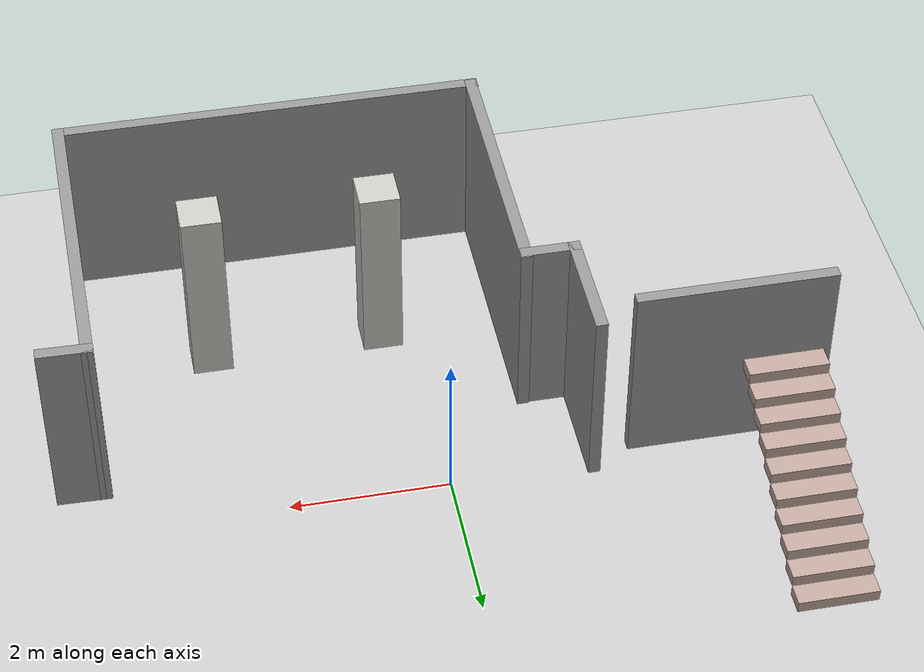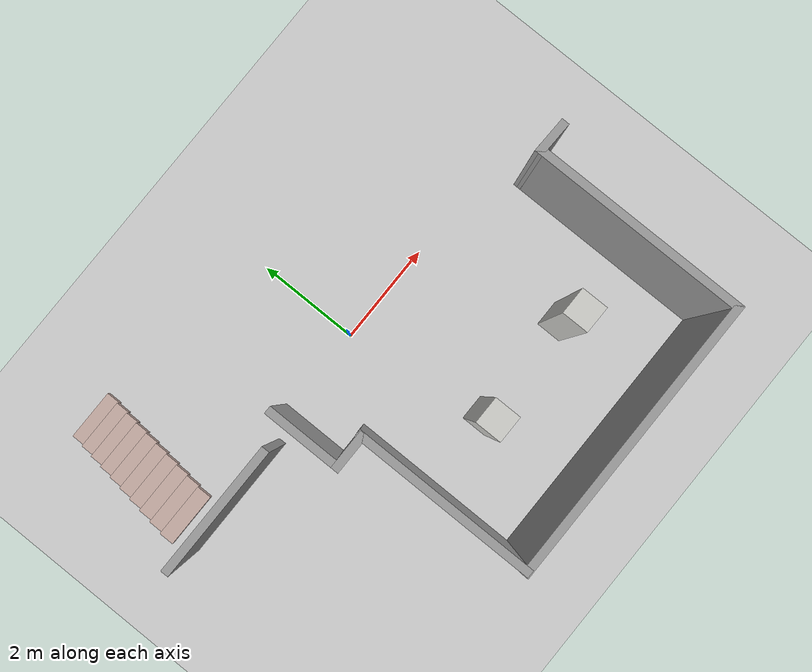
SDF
<sdf version="1.6">
 <world name="default">
  <model name="ground_plane">
   <static>1</static>
   <link name="link">
    <collision name="collision">
     <geometry><plane><normal>0 0 1</normal><size>100 100</size></plane></geometry>
     <surface><friction><ode><mu>100</mu><mu2>50</mu2></ode></friction></surface>
    </collision>
    <visual name="visual">
     <cast_shadows>0</cast_shadows>
     <geometry><plane><normal>0 0 1</normal><size>100 100</size></plane></geometry>
     <material>
      <script><uri>file://media/materials/scripts/gazebo.material</uri><name>Gazebo/Grey</name></script>
     </material>
    </visual>
   </link>
  </model>
  <model name="amtc">
   <link name="Stairs_2">
    <visual name="Stairs_2_Visual_0">
     <pose>-4.10209 2.63631 0.075 0 -0 0</pose>
     <geometry><box><size>1 0.275 0.15</size></box></geometry>
     <material>
      <script><uri>file://media/materials/scripts/gazebo.material</uri><name>Gazebo/Grey</name></script>
      <ambient>0.760784 0.662745 0.627451 1</ambient>
      <diffuse>0.7 0.7 0.7 1</diffuse>
      <specular>0.01 0.01 0.01 1</specular>
      <emissive>0 0 0 1</emissive>
     </material>
     <meta><layer>0</layer></meta>
    </visual>
    <visual name="Stairs_2_Visual_7">
     <pose>-4.10209 0.711315 1.125 0 -0 0</pose>
     <geometry><box><size>1 0.275 0.15</size></box></geometry>
     <material>
      <script><uri>file://media/materials/scripts/gazebo.material</uri><name>Gazebo/Grey</name></script>
      <ambient>0.760784 0.662745 0.627451 1</ambient>
      <diffuse>0.7 0.7 0.7 1</diffuse>
      <specular>0.01 0.01 0.01 1</specular>
      <emissive>0 0 0 1</emissive>
     </material>
     <meta><layer>0</layer></meta>
    </visual>
    <visual name="Stairs_2_Visual_8">
     <pose>-4.10209 0.436315 1.275 0 -0 0</pose>
     <geometry><box><size>1 0.275 0.15</size></box></geometry>
     <material>
      <script><uri>file://media/materials/scripts/gazebo.material</uri><name>Gazebo/Grey</name></script>
      <ambient>0.760784 0.662745 0.627451 1</ambient>
      <diffuse>0.7 0.7 0.7 1</diffuse>
      <specular>0.01 0.01 0.01 1</specular>
      <emissive>0 0 0 1</emissive>
     </material>
     <meta><layer>0</layer></meta>
    </visual>
    <visual name="Stairs_2_Visual_6">
     <pose>-4.10209 0.986315 0.975 0 -0 0</pose>
     <geometry><box><size>1 0.275 0.15</size></box></geometry>
     <material>
      <script><uri>file://media/materials/scripts/gazebo.material</uri><name>Gazebo/Grey</name></script>
      <ambient>0.760784 0.662745 0.627451 1</ambient>
      <diffuse>0.7 0.7 0.7 1</diffuse>
      <specular>0.01 0.01 0.01 1</specular>
      <emissive>0 0 0 1</emissive>
     </material>
     <meta><layer>0</layer></meta>
    </visual>
    <visual name="Stairs_2_Visual_5">
     <pose>-4.10209 1.26131 0.825 0 -0 0</pose>
     <geometry><box><size>1 0.275 0.15</size></box></geometry>
     <material>
      <script><uri>file://media/materials/scripts/gazebo.material</uri><name>Gazebo/Grey</name></script>
      <ambient>0.760784 0.662745 0.627451 1</ambient>
      <diffuse>0.7 0.7 0.7 1</diffuse>
      <specular>0.01 0.01 0.01 1</specular>
      <emissive>0 0 0 1</emissive>
     </material>
     <meta><layer>0</layer></meta>
    </visual>
    <visual name="Stairs_2_Visual_2">
     <pose>-4.10209 2.08631 0.375 0 -0 0</pose>
     <geometry><box><size>1 0.275 0.15</size></box></geometry>
     <material>
      <script><uri>file://media/materials/scripts/gazebo.material</uri><name>Gazebo/Grey</name></script>
      <ambient>0.760784 0.662745 0.627451 1</ambient>
      <diffuse>0.7 0.7 0.7 1</diffuse>
      <specular>0.01 0.01 0.01 1</specular>
      <emissive>0 0 0 1</emissive>
     </material>
     <meta><layer>0</layer></meta>
    </visual>
    <visual name="Stairs_2_Visual_4">
     <pose>-4.10209 1.53632 0.675 0 -0 0</pose>
     <geometry><box><size>1 0.275 0.15</size></box></geometry>
     <material>
      <script><uri>file://media/materials/scripts/gazebo.material</uri><name>Gazebo/Grey</name></script>
      <ambient>0.760784 0.662745 0.627451 1</ambient>
      <diffuse>0.7 0.7 0.7 1</diffuse>
      <specular>0.01 0.01 0.01 1</specular>
      <emissive>0 0 0 1</emissive>
     </material>
     <meta><layer>0</layer></meta>
    </visual>
    <visual name="Stairs_2_Visual_1">
     <pose>-4.10209 2.36131 0.225 0 -0 0</pose>
     <geometry><box><size>1 0.275 0.15</size></box></geometry>
     <material>
      <script><uri>file://media/materials/scripts/gazebo.material</uri><name>Gazebo/Grey</name></script>
      <ambient>0.760784 0.662745 0.627451 1</ambient>
      <diffuse>0.7 0.7 0.7 1</diffuse>
      <specular>0.01 0.01 0.01 1</specular>
      <emissive>0 0 0 1</emissive>
     </material>
     <meta><layer>0</layer></meta>
    </visual>
    <visual name="Stairs_2_Visual_9">
     <pose>-4.10209 0.161315 1.425 0 -0 0</pose>
     <geometry><box><size>1 0.275 0.15</size></box></geometry>
     <material>
      <script><uri>file://media/materials/scripts/gazebo.material</uri><name>Gazebo/Grey</name></script>
      <ambient>0.760784 0.662745 0.627451 1</ambient>
      <diffuse>0.7 0.7 0.7 1</diffuse>
      <specular>0.01 0.01 0.01 1</specular>
      <emissive>0 0 0 1</emissive>
     </material>
     <meta><layer>0</layer></meta>
    </visual>
    <visual name="Stairs_2_Visual_3">
     <pose>-4.10209 1.81132 0.525 0 -0 0</pose>
     <geometry><box><size>1 0.275 0.15</size></box></geometry>
     <material>
      <script><uri>file://media/materials/scripts/gazebo.material</uri><name>Gazebo/Grey</name></script>
      <ambient>0.760784 0.662745 0.627451 1</ambient>
      <diffuse>0.7 0.7 0.7 1</diffuse>
      <specular>0.01 0.01 0.01 1</specular>
      <emissive>0 0 0 1</emissive>
     </material>
     <meta><layer>0</layer></meta>
    </visual>
    <collision name="Stairs_2_Collision_1">
     <pose>-4.10209 2.36131 0.225 0 -0 0</pose>
     <geometry><box><size>1 0.275 0.15</size></box></geometry>
     <surface>
      <friction>
       <ode><mu>1</mu><mu2>1</mu2><fdir1>0 0 0</fdir1><slip1>0</slip1><slip2>0</slip2></ode>
       <torsional>
        <coefficient>1</coefficient>
        <patch_radius>0</patch_radius>
        <surface_radius>0</surface_radius>
        <use_patch_radius>1</use_patch_radius>
        <ode><slip>0</slip></ode>
       </torsional>
      </friction>
      <bounce><restitution_coefficient>0</restitution_coefficient><threshold>1e+06</threshold></bounce>
      <contact>
       <collide_without_contact>0</collide_without_contact>
       <collide_without_contact_bitmask>1</collide_without_contact_bitmask>
       <collide_bitmask>1</collide_bitmask>
       <ode>
        <soft_cfm>0</soft_cfm>
        <soft_erp>0.2</soft_erp>
        <kp>1e+13</kp>
        <kd>1</kd>
        <max_vel>0.01</max_vel>
        <min_depth>0</min_depth>
       </ode>
       <bullet>
        <split_impulse>1</split_impulse>
        <split_impulse_penetration_threshold>-0.01</split_impulse_penetration_threshold>
        <soft_cfm>0</soft_cfm>
        <soft_erp>0.2</soft_erp>
        <kp>1e+13</kp>
        <kd>1</kd>
       </bullet>
      </contact>
     </surface>
    </collision>
    <collision name="Stairs_2_Collision_2">
     <pose>-4.10209 2.08631 0.375 0 -0 0</pose>
     <geometry><box><size>1 0.275 0.15</size></box></geometry>
     <surface>
      <friction>
       <ode><mu>1</mu><mu2>1</mu2><fdir1>0 0 0</fdir1><slip1>0</slip1><slip2>0</slip2></ode>
       <torsional>
        <coefficient>1</coefficient>
        <patch_radius>0</patch_radius>
        <surface_radius>0</surface_radius>
        <use_patch_radius>1</use_patch_radius>
        <ode><slip>0</slip></ode>
       </torsional>
      </friction>
      <bounce><restitution_coefficient>0</restitution_coefficient><threshold>1e+06</threshold></bounce>
      <contact>
       <collide_without_contact>0</collide_without_contact>
       <collide_without_contact_bitmask>1</collide_without_contact_bitmask>
       <collide_bitmask>1</collide_bitmask>
       <ode>
        <soft_cfm>0</soft_cfm>
        <soft_erp>0.2</soft_erp>
        <kp>1e+13</kp>
        <kd>1</kd>
        <max_vel>0.01</max_vel>
        <min_depth>0</min_depth>
       </ode>
       <bullet>
        <split_impulse>1</split_impulse>
        <split_impulse_penetration_threshold>-0.01</split_impulse_penetration_threshold>
        <soft_cfm>0</soft_cfm>
        <soft_erp>0.2</soft_erp>
        <kp>1e+13</kp>
        <kd>1</kd>
       </bullet>
      </contact>
     </surface>
    </collision>
    <collision name="Stairs_2_Collision_3">
     <pose>-4.10209 1.81132 0.525 0 -0 0</pose>
     <geometry><box><size>1 0.275 0.15</size></box></geometry>
     <surface>
      <friction>
       <ode><mu>1</mu><mu2>1</mu2><fdir1>0 0 0</fdir1><slip1>0</slip1><slip2>0</slip2></ode>
       <torsional>
        <coefficient>1</coefficient>
        <patch_radius>0</patch_radius>
        <surface_radius>0</surface_radius>
        <use_patch_radius>1</use_patch_radius>
        <ode><slip>0</slip></ode>
       </torsional>
      </friction>
      <bounce><restitution_coefficient>0</restitution_coefficient><threshold>1e+06</threshold></bounce>
      <contact>
       <collide_without_contact>0</collide_without_contact>
       <collide_without_contact_bitmask>1</collide_without_contact_bitmask>
       <collide_bitmask>1</collide_bitmask>
       <ode>
        <soft_cfm>0</soft_cfm>
        <soft_erp>0.2</soft_erp>
        <kp>1e+13</kp>
        <kd>1</kd>
        <max_vel>0.01</max_vel>
        <min_depth>0</min_depth>
       </ode>
       <bullet>
        <split_impulse>1</split_impulse>
        <split_impulse_penetration_threshold>-0.01</split_impulse_penetration_threshold>
        <soft_cfm>0</soft_cfm>
        <soft_erp>0.2</soft_erp>
        <kp>1e+13</kp>
        <kd>1</kd>
       </bullet>
      </contact>
     </surface>
    </collision>
    <collision name="Stairs_2_Collision_0">
     <pose>-4.10209 2.63631 0.075 0 -0 0</pose>
     <geometry><box><size>1 0.275 0.15</size></box></geometry>
     <surface>
      <friction>
       <ode><mu>1</mu><mu2>1</mu2><fdir1>0 0 0</fdir1><slip1>0</slip1><slip2>0</slip2></ode>
       <torsional>
        <coefficient>1</coefficient>
        <patch_radius>0</patch_radius>
        <surface_radius>0</surface_radius>
        <use_patch_radius>1</use_patch_radius>
        <ode><slip>0</slip></ode>
       </torsional>
      </friction>
      <bounce><restitution_coefficient>0</restitution_coefficient><threshold>1e+06</threshold></bounce>
      <contact>
       <collide_without_contact>0</collide_without_contact>
       <collide_without_contact_bitmask>1</collide_without_contact_bitmask>
       <collide_bitmask>1</collide_bitmask>
       <ode>
        <soft_cfm>0</soft_cfm>
        <soft_erp>0.2</soft_erp>
        <kp>1e+13</kp>
        <kd>1</kd>
        <max_vel>0.01</max_vel>
        <min_depth>0</min_depth>
       </ode>
       <bullet>
        <split_impulse>1</split_impulse>
        <split_impulse_penetration_threshold>-0.01</split_impulse_penetration_threshold>
        <soft_cfm>0</soft_cfm>
        <soft_erp>0.2</soft_erp>
        <kp>1e+13</kp>
        <kd>1</kd>
       </bullet>
      </contact>
     </surface>
    </collision>
    <collision name="Stairs_2_Collision_4">
     <pose>-4.10209 1.53632 0.675 0 -0 0</pose>
     <geometry><box><size>1 0.275 0.15</size></box></geometry>
     <surface>
      <friction>
       <ode><mu>1</mu><mu2>1</mu2><fdir1>0 0 0</fdir1><slip1>0</slip1><slip2>0</slip2></ode>
       <torsional>
        <coefficient>1</coefficient>
        <patch_radius>0</patch_radius>
        <surface_radius>0</surface_radius>
        <use_patch_radius>1</use_patch_radius>
        <ode><slip>0</slip></ode>
       </torsional>
      </friction>
      <bounce><restitution_coefficient>0</restitution_coefficient><threshold>1e+06</threshold></bounce>
      <contact>
       <collide_without_contact>0</collide_without_contact>
       <collide_without_contact_bitmask>1</collide_without_contact_bitmask>
       <collide_bitmask>1</collide_bitmask>
       <ode>
        <soft_cfm>0</soft_cfm>
        <soft_erp>0.2</soft_erp>
        <kp>1e+13</kp>
        <kd>1</kd>
        <max_vel>0.01</max_vel>
        <min_depth>0</min_depth>
       </ode>
       <bullet>
        <split_impulse>1</split_impulse>
        <split_impulse_penetration_threshold>-0.01</split_impulse_penetration_threshold>
        <soft_cfm>0</soft_cfm>
        <soft_erp>0.2</soft_erp>
        <kp>1e+13</kp>
        <kd>1</kd>
       </bullet>
      </contact>
     </surface>
    </collision>
    <collision name="Stairs_2_Collision_7">
     <pose>-4.10209 0.711315 1.125 0 -0 0</pose>
     <geometry><box><size>1 0.275 0.15</size></box></geometry>
     <surface>
      <friction>
       <ode><mu>1</mu><mu2>1</mu2><fdir1>0 0 0</fdir1><slip1>0</slip1><slip2>0</slip2></ode>
       <torsional>
        <coefficient>1</coefficient>
        <patch_radius>0</patch_radius>
        <surface_radius>0</surface_radius>
        <use_patch_radius>1</use_patch_radius>
        <ode><slip>0</slip></ode>
       </torsional>
      </friction>
      <bounce><restitution_coefficient>0</restitution_coefficient><threshold>1e+06</threshold></bounce>
      <contact>
       <collide_without_contact>0</collide_without_contact>
       <collide_without_contact_bitmask>1</collide_without_contact_bitmask>
       <collide_bitmask>1</collide_bitmask>
       <ode>
        <soft_cfm>0</soft_cfm>
        <soft_erp>0.2</soft_erp>
        <kp>1e+13</kp>
        <kd>1</kd>
        <max_vel>0.01</max_vel>
        <min_depth>0</min_depth>
       </ode>
       <bullet>
        <split_impulse>1</split_impulse>
        <split_impulse_penetration_threshold>-0.01</split_impulse_penetration_threshold>
        <soft_cfm>0</soft_cfm>
        <soft_erp>0.2</soft_erp>
        <kp>1e+13</kp>
        <kd>1</kd>
       </bullet>
      </contact>
     </surface>
    </collision>
    <collision name="Stairs_2_Collision_6">
     <pose>-4.10209 0.986315 0.975 0 -0 0</pose>
     <geometry><box><size>1 0.275 0.15</size></box></geometry>
     <surface>
      <friction>
       <ode><mu>1</mu><mu2>1</mu2><fdir1>0 0 0</fdir1><slip1>0</slip1><slip2>0</slip2></ode>
       <torsional>
        <coefficient>1</coefficient>
        <patch_radius>0</patch_radius>
        <surface_radius>0</surface_radius>
        <use_patch_radius>1</use_patch_radius>
        <ode><slip>0</slip></ode>
       </torsional>
      </friction>
      <bounce><restitution_coefficient>0</restitution_coefficient><threshold>1e+06</threshold></bounce>
      <contact>
       <collide_without_contact>0</collide_without_contact>
       <collide_without_contact_bitmask>1</collide_without_contact_bitmask>
       <collide_bitmask>1</collide_bitmask>
       <ode>
        <soft_cfm>0</soft_cfm>
        <soft_erp>0.2</soft_erp>
        <kp>1e+13</kp>
        <kd>1</kd>
        <max_vel>0.01</max_vel>
        <min_depth>0</min_depth>
       </ode>
       <bullet>
        <split_impulse>1</split_impulse>
        <split_impulse_penetration_threshold>-0.01</split_impulse_penetration_threshold>
        <soft_cfm>0</soft_cfm>
        <soft_erp>0.2</soft_erp>
        <kp>1e+13</kp>
        <kd>1</kd>
       </bullet>
      </contact>
     </surface>
    </collision>
    <collision name="Stairs_2_Collision_8">
     <pose>-4.10209 0.436315 1.275 0 -0 0</pose>
     <geometry><box><size>1 0.275 0.15</size></box></geometry>
     <surface>
      <friction>
       <ode><mu>1</mu><mu2>1</mu2><fdir1>0 0 0</fdir1><slip1>0</slip1><slip2>0</slip2></ode>
       <torsional>
        <coefficient>1</coefficient>
        <patch_radius>0</patch_radius>
        <surface_radius>0</surface_radius>
        <use_patch_radius>1</use_patch_radius>
        <ode><slip>0</slip></ode>
       </torsional>
      </friction>
      <bounce><restitution_coefficient>0</restitution_coefficient><threshold>1e+06</threshold></bounce>
      <contact>
       <collide_without_contact>0</collide_without_contact>
       <collide_without_contact_bitmask>1</collide_without_contact_bitmask>
       <collide_bitmask>1</collide_bitmask>
       <ode>
        <soft_cfm>0</soft_cfm>
        <soft_erp>0.2</soft_erp>
        <kp>1e+13</kp>
        <kd>1</kd>
        <max_vel>0.01</max_vel>
        <min_depth>0</min_depth>
       </ode>
       <bullet>
        <split_impulse>1</split_impulse>
        <split_impulse_penetration_threshold>-0.01</split_impulse_penetration_threshold>
        <soft_cfm>0</soft_cfm>
        <soft_erp>0.2</soft_erp>
        <kp>1e+13</kp>
        <kd>1</kd>
       </bullet>
      </contact>
     </surface>
    </collision>
    <collision name="Stairs_2_Collision_9">
     <pose>-4.10209 0.161315 1.425 0 -0 0</pose>
     <geometry><box><size>1 0.275 0.15</size></box></geometry>
     <surface>
      <friction>
       <ode><mu>1</mu><mu2>1</mu2><fdir1>0 0 0</fdir1><slip1>0</slip1><slip2>0</slip2></ode>
       <torsional>
        <coefficient>1</coefficient>
        <patch_radius>0</patch_radius>
        <surface_radius>0</surface_radius>
        <use_patch_radius>1</use_patch_radius>
        <ode><slip>0</slip></ode>
       </torsional>
      </friction>
      <bounce><restitution_coefficient>0</restitution_coefficient><threshold>1e+06</threshold></bounce>
      <contact>
       <collide_without_contact>0</collide_without_contact>
       <collide_without_contact_bitmask>1</collide_without_contact_bitmask>
       <collide_bitmask>1</collide_bitmask>
       <ode>
        <soft_cfm>0</soft_cfm>
        <soft_erp>0.2</soft_erp>
        <kp>1e+13</kp>
        <kd>1</kd>
        <max_vel>0.01</max_vel>
        <min_depth>0</min_depth>
       </ode>
       <bullet>
        <split_impulse>1</split_impulse>
        <split_impulse_penetration_threshold>-0.01</split_impulse_penetration_threshold>
        <soft_cfm>0</soft_cfm>
        <soft_erp>0.2</soft_erp>
        <kp>1e+13</kp>
        <kd>1</kd>
       </bullet>
      </contact>
     </surface>
    </collision>
    <collision name="Stairs_2_Collision_5">
     <pose>-4.10209 1.26131 0.825 0 -0 0</pose>
     <geometry><box><size>1 0.275 0.15</size></box></geometry>
     <surface>
      <friction>
       <ode><mu>1</mu><mu2>1</mu2><fdir1>0 0 0</fdir1><slip1>0</slip1><slip2>0</slip2></ode>
       <torsional>
        <coefficient>1</coefficient>
        <patch_radius>0</patch_radius>
        <surface_radius>0</surface_radius>
        <use_patch_radius>1</use_patch_radius>
        <ode><slip>0</slip></ode>
       </torsional>
      </friction>
      <bounce><restitution_coefficient>0</restitution_coefficient><threshold>1e+06</threshold></bounce>
      <contact>
       <collide_without_contact>0</collide_without_contact>
       <collide_without_contact_bitmask>1</collide_without_contact_bitmask>
       <collide_bitmask>1</collide_bitmask>
       <ode>
        <soft_cfm>0</soft_cfm>
        <soft_erp>0.2</soft_erp>
        <kp>1e+13</kp>
        <kd>1</kd>
        <max_vel>0.01</max_vel>
        <min_depth>0</min_depth>
       </ode>
       <bullet>
        <split_impulse>1</split_impulse>
        <split_impulse_penetration_threshold>-0.01</split_impulse_penetration_threshold>
        <soft_cfm>0</soft_cfm>
        <soft_erp>0.2</soft_erp>
        <kp>1e+13</kp>
        <kd>1</kd>
       </bullet>
      </contact>
     </surface>
    </collision>
   </link>
   <link name="Wall_19">
    <pose>-3.5281 -0.244815 0 0 -0 0</pose>
    <visual name="Wall_19_Visual">
     <pose>0 0 1.25 0 -0 0</pose>
     <geometry><box><size>2.5 0.15 2.5</size></box></geometry>
     <material>
      <script><uri>file://media/materials/scripts/gazebo.material</uri><name>Gazebo/Grey</name></script>
      <ambient>1 1 1 1</ambient>
      <diffuse>0.7 0.7 0.7 1</diffuse>
      <specular>0.01 0.01 0.01 1</specular>
      <emissive>0 0 0 1</emissive>
     </material>
     <meta><layer>0</layer></meta>
    </visual>
    <collision name="Wall_19_Collision">
     <pose>0 0 1.25 0 -0 0</pose>
     <geometry><box><size>2.5 0.15 2.5</size></box></geometry>
     <surface>
      <friction>
       <ode><mu>1</mu><mu2>1</mu2><fdir1>0 0 0</fdir1><slip1>0</slip1><slip2>0</slip2></ode>
       <torsional>
        <coefficient>1</coefficient>
        <patch_radius>0</patch_radius>
        <surface_radius>0</surface_radius>
        <use_patch_radius>1</use_patch_radius>
        <ode><slip>0</slip></ode>
       </torsional>
      </friction>
      <bounce><restitution_coefficient>0</restitution_coefficient><threshold>1e+06</threshold></bounce>
      <contact>
       <collide_without_contact>0</collide_without_contact>
       <collide_without_contact_bitmask>1</collide_without_contact_bitmask>
       <collide_bitmask>1</collide_bitmask>
       <ode>
        <soft_cfm>0</soft_cfm>
        <soft_erp>0.2</soft_erp>
        <kp>1e+13</kp>
        <kd>1</kd>
        <max_vel>0.01</max_vel>
        <min_depth>0</min_depth>
       </ode>
       <bullet>
        <split_impulse>1</split_impulse>
        <split_impulse_penetration_threshold>-0.01</split_impulse_penetration_threshold>
        <soft_cfm>0</soft_cfm>
        <soft_erp>0.2</soft_erp>
        <kp>1e+13</kp>
        <kd>1</kd>
       </bullet>
      </contact>
     </surface>
    </collision>
   </link>
   <link name="Wall_35">
    <pose>4.43465 -0.650022 0 0 -0 3.11708</pose>
    <visual name="Wall_35_Visual">
     <pose>0 0 1.25 0 -0 0</pose>
     <geometry><box><size>0.679107 0.15 2.5</size></box></geometry>
     <material>
      <script><uri>file://media/materials/scripts/gazebo.material</uri><name>Gazebo/Grey</name></script>
      <ambient>1 1 1 1</ambient>
      <diffuse>0.7 0.7 0.7 1</diffuse>
      <specular>0.01 0.01 0.01 1</specular>
      <emissive>0 0 0 1</emissive>
     </material>
     <meta><layer>0</layer></meta>
    </visual>
    <collision name="Wall_35_Collision">
     <pose>0 0 1.25 0 -0 0</pose>
     <geometry><box><size>0.679107 0.15 2.5</size></box></geometry>
     <surface>
      <friction>
       <ode><mu>1</mu><mu2>1</mu2><fdir1>0 0 0</fdir1><slip1>0</slip1><slip2>0</slip2></ode>
       <torsional>
        <coefficient>1</coefficient>
        <patch_radius>0</patch_radius>
        <surface_radius>0</surface_radius>
        <use_patch_radius>1</use_patch_radius>
        <ode><slip>0</slip></ode>
       </torsional>
      </friction>
      <bounce><restitution_coefficient>0</restitution_coefficient><threshold>1e+06</threshold></bounce>
      <contact>
       <collide_without_contact>0</collide_without_contact>
       <collide_without_contact_bitmask>1</collide_without_contact_bitmask>
       <collide_bitmask>1</collide_bitmask>
       <ode>
        <soft_cfm>0</soft_cfm>
        <soft_erp>0.2</soft_erp>
        <kp>1e+13</kp>
        <kd>1</kd>
        <max_vel>0.01</max_vel>
        <min_depth>0</min_depth>
       </ode>
       <bullet>
        <split_impulse>1</split_impulse>
        <split_impulse_penetration_threshold>-0.01</split_impulse_penetration_threshold>
        <soft_cfm>0</soft_cfm>
        <soft_erp>0.2</soft_erp>
        <kp>1e+13</kp>
        <kd>1</kd>
       </bullet>
      </contact>
     </surface>
    </collision>
   </link>
   <link name="Wall_59">
    <pose>0.388539 -2.79623 0 0 -0 0</pose>
    <inertial>
     <mass>1</mass>
     <inertia><ixx>1</ixx><ixy>0</ixy><ixz>0</ixz><iyy>1</iyy><iyz>0</iyz><izz>1</izz></inertia>
    </inertial>
    <visual name="Wall_59_Visual">
     <pose>0 0 1.25 0 -0 0</pose>
     <geometry><box><size>0.51 0.5 2.5</size></box></geometry>
     <material>
      <script><uri>file://media/materials/scripts/gazebo.material</uri><name>Gazebo/CeilingTiled</name></script>
      <ambient>1 1 1 1</ambient>
      <diffuse>1 1 1 1</diffuse>
      <specular>0 0 0 1</specular>
      <emissive>0 0 0 1</emissive>
      <shader type="vertex"><normal_map>__default__</normal_map></shader>
     </material>
     <meta><layer>0</layer></meta>
    </visual>
    <collision name="Wall_59_Collision">
     <pose>0 0 1.25 0 -0 0</pose>
     <geometry><box><size>0.51 0.5 2.5</size></box></geometry>
     <surface>
      <friction>
       <ode><mu>1</mu><mu2>1</mu2><fdir1>0 0 0</fdir1><slip1>0</slip1><slip2>0</slip2></ode>
       <torsional>
        <coefficient>1</coefficient>
        <patch_radius>0</patch_radius>
        <surface_radius>0</surface_radius>
        <use_patch_radius>1</use_patch_radius>
        <ode><slip>0</slip></ode>
       </torsional>
      </friction>
      <bounce><restitution_coefficient>0</restitution_coefficient><threshold>1e+06</threshold></bounce>
      <contact>
       <collide_without_contact>0</collide_without_contact>
       <collide_without_contact_bitmask>1</collide_without_contact_bitmask>
       <collide_bitmask>1</collide_bitmask>
       <ode>
        <soft_cfm>0</soft_cfm>
        <soft_erp>0.2</soft_erp>
        <kp>1e+13</kp>
        <kd>1</kd>
        <max_vel>0.01</max_vel>
        <min_depth>0</min_depth>
       </ode>
       <bullet>
        <split_impulse>1</split_impulse>
        <split_impulse_penetration_threshold>-0.01</split_impulse_penetration_threshold>
        <soft_cfm>0</soft_cfm>
        <soft_erp>0.2</soft_erp>
        <kp>1e+13</kp>
        <kd>1</kd>
       </bullet>
      </contact>
     </surface>
    </collision>
   </link>
   <link name="Wall_63">
    <pose>2.60498 -2.78179 0 0 -0 3.14159</pose>
    <visual name="Wall_63_Visual">
     <pose>0 0 1.25 0 -0 0</pose>
     <geometry><box><size>0.51 0.5 2.5</size></box></geometry>
     <material>
      <script><uri>file://media/materials/scripts/gazebo.material</uri><name>Gazebo/CeilingTiled</name></script>
      <ambient>1 1 1 1</ambient>
      <diffuse>1 1 1 1</diffuse>
      <specular>0 0 0 1</specular>
      <emissive>0 0 0 1</emissive>
     </material>
     <meta><layer>0</layer></meta>
    </visual>
    <collision name="Wall_63_Collision">
     <pose>0 0 1.25 0 -0 0</pose>
     <geometry><box><size>0.51 0.5 2.5</size></box></geometry>
     <surface>
      <friction>
       <ode><mu>1</mu><mu2>1</mu2><fdir1>0 0 0</fdir1><slip1>0</slip1><slip2>0</slip2></ode>
       <torsional>
        <coefficient>1</coefficient>
        <patch_radius>0</patch_radius>
        <surface_radius>0</surface_radius>
        <use_patch_radius>1</use_patch_radius>
        <ode><slip>0</slip></ode>
       </torsional>
      </friction>
      <bounce><restitution_coefficient>0</restitution_coefficient><threshold>1e+06</threshold></bounce>
      <contact>
       <collide_without_contact>0</collide_without_contact>
       <collide_without_contact_bitmask>1</collide_without_contact_bitmask>
       <collide_bitmask>1</collide_bitmask>
       <ode>
        <soft_cfm>0</soft_cfm>
        <soft_erp>0.2</soft_erp>
        <kp>1e+13</kp>
        <kd>1</kd>
        <max_vel>0.01</max_vel>
        <min_depth>0</min_depth>
       </ode>
       <bullet>
        <split_impulse>1</split_impulse>
        <split_impulse_penetration_threshold>-0.01</split_impulse_penetration_threshold>
        <soft_cfm>0</soft_cfm>
        <soft_erp>0.2</soft_erp>
        <kp>1e+13</kp>
        <kd>1</kd>
       </bullet>
      </contact>
     </surface>
    </collision>
   </link>
   <link name="Wall_65">
    <pose>4.17018 -2.64354 0 0 0 -1.5708</pose>
    <visual name="Wall_65_Visual">
     <pose>0 0 1.25 0 -0 0</pose>
     <geometry><box><size>4.15 0.15 2.5</size></box></geometry>
     <material>
      <script><uri>file://media/materials/scripts/gazebo.material</uri><name>Gazebo/Grey</name></script>
      <ambient>1 1 1 1</ambient>
      <diffuse>0.7 0.7 0.7 1</diffuse>
      <specular>0.01 0.01 0.01 1</specular>
      <emissive>0 0 0 1</emissive>
     </material>
     <meta><layer>0</layer></meta>
    </visual>
    <collision name="Wall_65_Collision">
     <pose>0 0 1.25 0 -0 0</pose>
     <geometry><box><size>4.15 0.15 2.5</size></box></geometry>
     <surface>
      <friction>
       <ode><mu>1</mu><mu2>1</mu2><fdir1>0 0 0</fdir1><slip1>0</slip1><slip2>0</slip2></ode>
       <torsional>
        <coefficient>1</coefficient>
        <patch_radius>0</patch_radius>
        <surface_radius>0</surface_radius>
        <use_patch_radius>1</use_patch_radius>
        <ode><slip>0</slip></ode>
       </torsional>
      </friction>
      <bounce><restitution_coefficient>0</restitution_coefficient><threshold>1e+06</threshold></bounce>
      <contact>
       <collide_without_contact>0</collide_without_contact>
       <collide_without_contact_bitmask>1</collide_without_contact_bitmask>
       <collide_bitmask>1</collide_bitmask>
       <ode>
        <soft_cfm>0</soft_cfm>
        <soft_erp>0.2</soft_erp>
        <kp>1e+13</kp>
        <kd>1</kd>
        <max_vel>0.01</max_vel>
        <min_depth>0</min_depth>
       </ode>
       <bullet>
        <split_impulse>1</split_impulse>
        <split_impulse_penetration_threshold>-0.01</split_impulse_penetration_threshold>
        <soft_cfm>0</soft_cfm>
        <soft_erp>0.2</soft_erp>
        <kp>1e+13</kp>
        <kd>1</kd>
       </bullet>
      </contact>
     </surface>
    </collision>
   </link>
   <link name="Wall_73">
    <pose>1.49518 -4.64354 0 0 -0 3.14159</pose>
    <visual name="Wall_73_Visual">
     <pose>0 0 1.25 0 -0 0</pose>
     <geometry><box><size>5.5 0.15 2.5</size></box></geometry>
     <material>
      <script><uri>file://media/materials/scripts/gazebo.material</uri><name>Gazebo/Grey</name></script>
      <ambient>1 1 1 1</ambient>
      <diffuse>0.7 0.7 0.7 1</diffuse>
      <specular>0.01 0.01 0.01 1</specular>
      <emissive>0 0 0 1</emissive>
     </material>
     <meta><layer>0</layer></meta>
    </visual>
    <collision name="Wall_73_Collision">
     <pose>0 0 1.25 0 -0 0</pose>
     <geometry><box><size>5.5 0.15 2.5</size></box></geometry>
     <surface>
      <friction>
       <ode><mu>1</mu><mu2>1</mu2><fdir1>0 0 0</fdir1><slip1>0</slip1><slip2>0</slip2></ode>
       <torsional>
        <coefficient>1</coefficient>
        <patch_radius>0</patch_radius>
        <surface_radius>0</surface_radius>
        <use_patch_radius>1</use_patch_radius>
        <ode><slip>0</slip></ode>
       </torsional>
      </friction>
      <bounce><restitution_coefficient>0</restitution_coefficient><threshold>1e+06</threshold></bounce>
      <contact>
       <collide_without_contact>0</collide_without_contact>
       <collide_without_contact_bitmask>1</collide_without_contact_bitmask>
       <collide_bitmask>1</collide_bitmask>
       <ode>
        <soft_cfm>0</soft_cfm>
        <soft_erp>0.2</soft_erp>
        <kp>1e+13</kp>
        <kd>1</kd>
        <max_vel>0.01</max_vel>
        <min_depth>0</min_depth>
       </ode>
       <bullet>
        <split_impulse>1</split_impulse>
        <split_impulse_penetration_threshold>-0.01</split_impulse_penetration_threshold>
        <soft_cfm>0</soft_cfm>
        <soft_erp>0.2</soft_erp>
        <kp>1e+13</kp>
        <kd>1</kd>
       </bullet>
      </contact>
     </surface>
    </collision>
   </link>
   <link name="Wall_74">
    <pose>-1.17086 -2.95153 0 0 -0 1.5708</pose>
    <visual name="Wall_74_Visual">
     <pose>0 0 1.25 0 -0 0</pose>
     <geometry><box><size>3.5 0.15 2.5</size></box></geometry>
     <material>
      <script><uri>file://media/materials/scripts/gazebo.material</uri><name>Gazebo/Grey</name></script>
      <ambient>1 1 1 1</ambient>
      <diffuse>0.7 0.7 0.7 1</diffuse>
      <specular>0.01 0.01 0.01 1</specular>
      <emissive>0 0 0 1</emissive>
     </material>
     <meta><layer>0</layer></meta>
    </visual>
    <collision name="Wall_74_Collision">
     <pose>0 0 1.25 0 -0 0</pose>
     <geometry><box><size>3.5 0.15 2.5</size></box></geometry>
     <surface>
      <friction>
       <ode><mu>1</mu><mu2>1</mu2><fdir1>0 0 0</fdir1><slip1>0</slip1><slip2>0</slip2></ode>
       <torsional>
        <coefficient>1</coefficient>
        <patch_radius>0</patch_radius>
        <surface_radius>0</surface_radius>
        <use_patch_radius>1</use_patch_radius>
        <ode><slip>0</slip></ode>
       </torsional>
      </friction>
      <bounce><restitution_coefficient>0</restitution_coefficient><threshold>1e+06</threshold></bounce>
      <contact>
       <collide_without_contact>0</collide_without_contact>
       <collide_without_contact_bitmask>1</collide_without_contact_bitmask>
       <collide_bitmask>1</collide_bitmask>
       <ode>
        <soft_cfm>0</soft_cfm>
        <soft_erp>0.2</soft_erp>
        <kp>1e+13</kp>
        <kd>1</kd>
        <max_vel>0.01</max_vel>
        <min_depth>0</min_depth>
       </ode>
       <bullet>
        <split_impulse>1</split_impulse>
        <split_impulse_penetration_threshold>-0.01</split_impulse_penetration_threshold>
        <soft_cfm>0</soft_cfm>
        <soft_erp>0.2</soft_erp>
        <kp>1e+13</kp>
        <kd>1</kd>
       </bullet>
      </contact>
     </surface>
    </collision>
   </link>
   <link name="Wall_78">
    <pose>-1.47982 -1.29354 0 0 -0 3.14159</pose>
    <visual name="Wall_78_Visual">
     <pose>0 0 1.25 0 -0 0</pose>
     <geometry><box><size>0.75 0.15 2.5</size></box></geometry>
     <material>
      <script><uri>file://media/materials/scripts/gazebo.material</uri><name>Gazebo/Grey</name></script>
      <ambient>1 1 1 1</ambient>
      <diffuse>0.7 0.7 0.7 1</diffuse>
      <specular>0.01 0.01 0.01 1</specular>
      <emissive>0 0 0 1</emissive>
     </material>
     <meta><layer>0</layer></meta>
    </visual>
    <collision name="Wall_78_Collision">
     <pose>0 0 1.25 0 -0 0</pose>
     <geometry><box><size>0.75 0.15 2.5</size></box></geometry>
     <surface>
      <friction>
       <ode><mu>1</mu><mu2>1</mu2><fdir1>0 0 0</fdir1><slip1>0</slip1><slip2>0</slip2></ode>
       <torsional>
        <coefficient>1</coefficient>
        <patch_radius>0</patch_radius>
        <surface_radius>0</surface_radius>
        <use_patch_radius>1</use_patch_radius>
        <ode><slip>0</slip></ode>
       </torsional>
      </friction>
      <bounce><restitution_coefficient>0</restitution_coefficient><threshold>1e+06</threshold></bounce>
      <contact>
       <collide_without_contact>0</collide_without_contact>
       <collide_without_contact_bitmask>1</collide_without_contact_bitmask>
       <collide_bitmask>1</collide_bitmask>
       <ode>
        <soft_cfm>0</soft_cfm>
        <soft_erp>0.2</soft_erp>
        <kp>1e+13</kp>
        <kd>1</kd>
        <max_vel>0.01</max_vel>
        <min_depth>0</min_depth>
       </ode>
       <bullet>
        <split_impulse>1</split_impulse>
        <split_impulse_penetration_threshold>-0.01</split_impulse_penetration_threshold>
        <soft_cfm>0</soft_cfm>
        <soft_erp>0.2</soft_erp>
        <kp>1e+13</kp>
        <kd>1</kd>
       </bullet>
      </contact>
     </surface>
    </collision>
   </link>
   <link name="Wall_79">
    <pose>-1.77982 -0.618537 0 0 -0 1.5708</pose>
    <visual name="Wall_79_Visual">
     <pose>0 0 1.25 0 -0 0</pose>
     <geometry><box><size>1.5 0.15 2.5</size></box></geometry>
     <material>
      <script><uri>file://media/materials/scripts/gazebo.material</uri><name>Gazebo/Grey</name></script>
      <ambient>1 1 1 1</ambient>
      <diffuse>0.7 0.7 0.7 1</diffuse>
      <specular>0.01 0.01 0.01 1</specular>
      <emissive>0 0 0 1</emissive>
     </material>
     <meta><layer>0</layer></meta>
    </visual>
    <collision name="Wall_79_Collision">
     <pose>0 0 1.25 0 -0 0</pose>
     <geometry><box><size>1.5 0.15 2.5</size></box></geometry>
     <surface>
      <friction>
       <ode><mu>1</mu><mu2>1</mu2><fdir1>0 0 0</fdir1><slip1>0</slip1><slip2>0</slip2></ode>
       <torsional>
        <coefficient>1</coefficient>
        <patch_radius>0</patch_radius>
        <surface_radius>0</surface_radius>
        <use_patch_radius>1</use_patch_radius>
        <ode><slip>0</slip></ode>
       </torsional>
      </friction>
      <bounce><restitution_coefficient>0</restitution_coefficient><threshold>1e+06</threshold></bounce>
      <contact>
       <collide_without_contact>0</collide_without_contact>
       <collide_without_contact_bitmask>1</collide_without_contact_bitmask>
       <collide_bitmask>1</collide_bitmask>
       <ode>
        <soft_cfm>0</soft_cfm>
        <soft_erp>0.2</soft_erp>
        <kp>1e+13</kp>
        <kd>1</kd>
        <max_vel>0.01</max_vel>
        <min_depth>0</min_depth>
       </ode>
       <bullet>
        <split_impulse>1</split_impulse>
        <split_impulse_penetration_threshold>-0.01</split_impulse_penetration_threshold>
        <soft_cfm>0</soft_cfm>
        <soft_erp>0.2</soft_erp>
        <kp>1e+13</kp>
        <kd>1</kd>
       </bullet>
      </contact>
     </surface>
    </collision>
   </link>
   <static>1</static>
  </model>
 </world>
</sdf>
